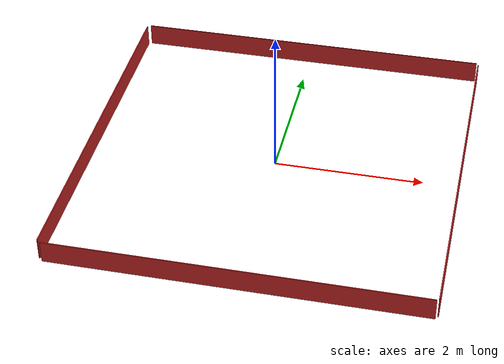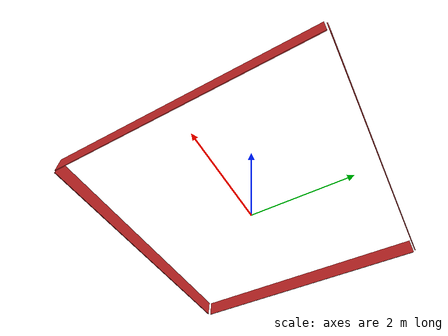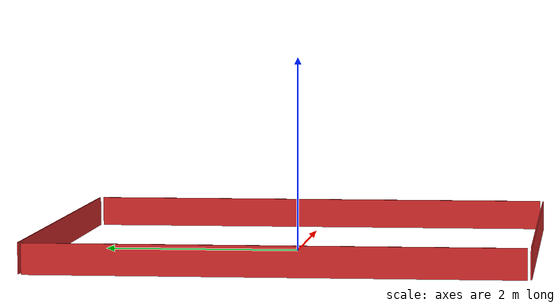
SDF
<sdf version='1.5'>
    <!-- Draw Circle -->
    <model name='ros_symbol'>
      <static>1</static>
      <link name='symbol'>
        <!-- Draw Wall -->
        <collision name='body'>
        <pose>0 0 0 0 0 0</pose>
        <geometry>
          <mesh>
            <uri>model://turtlebot3_worldSQUARE/meshes/SquareWall.dae</uri>
            <scale>2 2 2</scale>
          </mesh>
        </geometry>
        <max_contacts>10</max_contacts>
        <surface>
          <bounce/>
          <friction>
            <ode/>
          </friction>
          <contact>
            <ode/>
          </contact>
        </surface>
      </collision>

      <visual name='body'>
        <pose>0 0 0 0 0 0</pose>
        <geometry>
          <mesh>
            <uri>model://turtlebot3_worldSQUARE/meshes/SquareWall.dae</uri>
            <scale>2 2 2</scale>
          </mesh>
        </geometry>
        <material>
          <script>
            <uri>/usr/share/media/materials/scripts/gazebo.material</uri>
            <name>Gazebo/Red</name>
          </script>
        </material>
      </visual>
    </link>
  </model>
</sdf>
